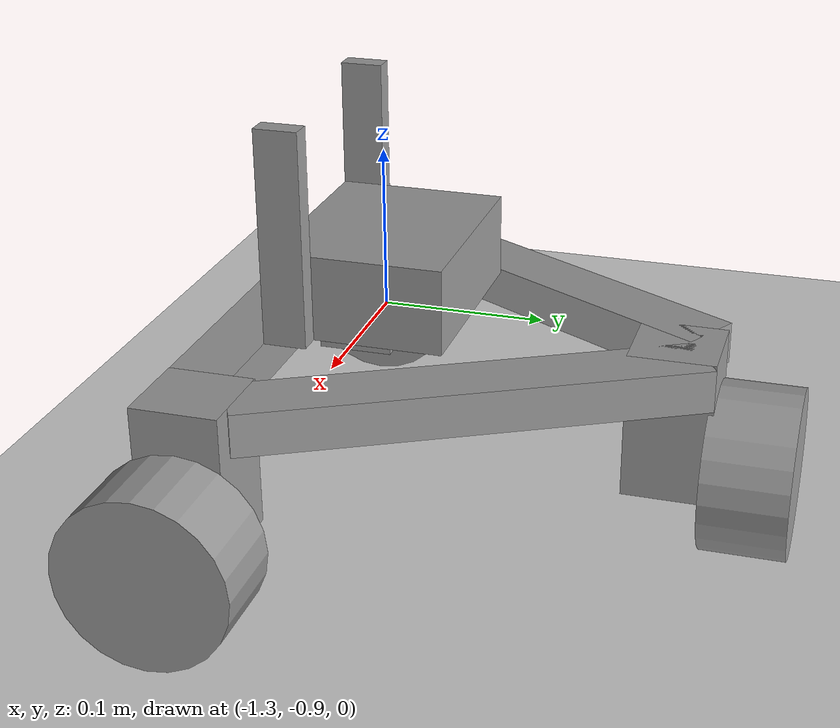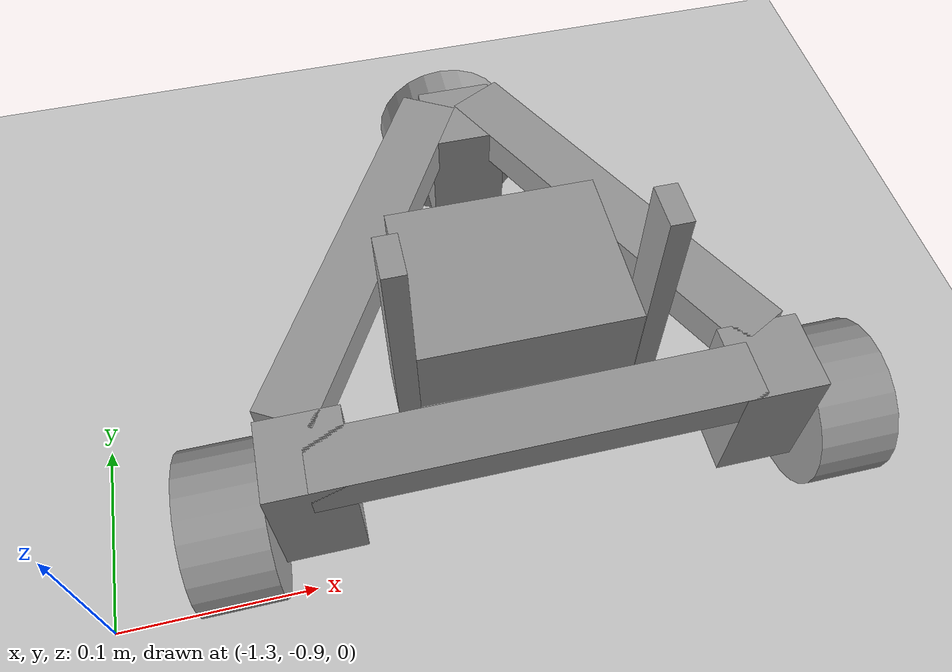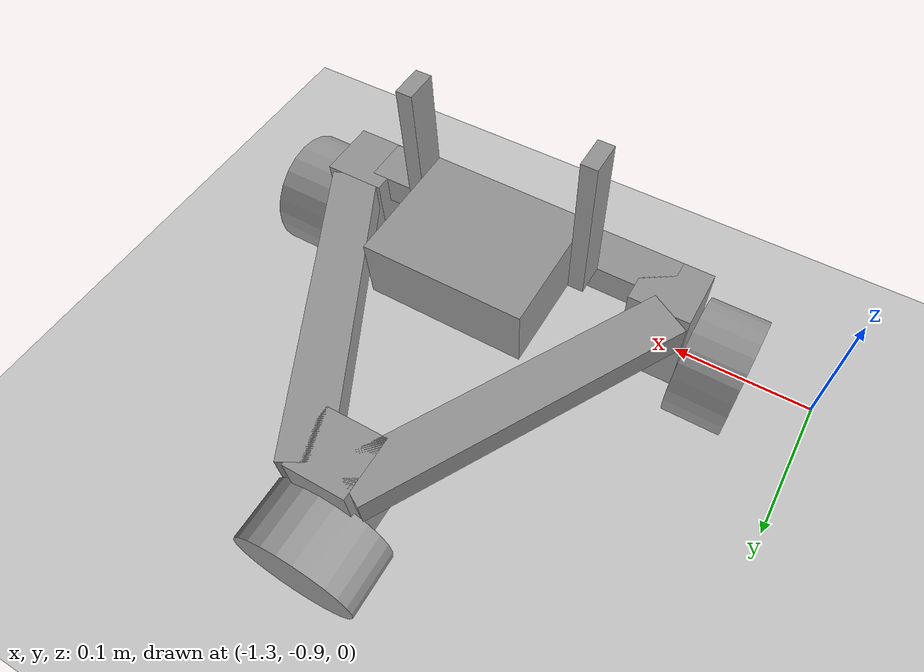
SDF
<sdf version="1.6">
 <world name="default">
  <model name="ground_plane">
   <static>1</static>
   <link name="link">
    <collision name="collision">
     <geometry><plane><normal>0 0 1</normal><size>100 100</size></plane></geometry>
     <surface><friction><ode><mu>100</mu><mu2>50</mu2></ode></friction></surface>
    </collision>
    <visual name="visual">
     <cast_shadows>0</cast_shadows>
     <geometry><plane><normal>0 0 1</normal><size>100 100</size></plane></geometry>
     <material>
      <script><uri>file://media/materials/scripts/gazebo.material</uri><name>Gazebo/Grey</name></script>
     </material>
    </visual>
   </link>
  </model>
  <model name="Kaya_0">
   <link name="link_0">
    <pose>-0.003284 -0.064713 0.005909 0 -0 0</pose>
    <inertial>
     <mass>1</mass>
     <inertia>
      <ixx>0.166667</ixx>
      <ixy>0</ixy>
      <ixz>0</ixz>
      <iyy>0.166667</iyy>
      <iyz>0</iyz>
      <izz>0.166667</izz>
     </inertia>
    </inertial>
    <visual name="visual">
     <geometry><box><size>0.21 0.03 0.02</size></box></geometry>
     <material>
      <lighting>1</lighting>
      <script><uri>file://media/materials/scripts/gazebo.material</uri><name>Gazebo/Grey</name></script>
      <ambient>0.3 0.3 0.3 1</ambient>
      <diffuse>0.7 0.7 0.7 1</diffuse>
      <specular>0.01 0.01 0.01 1</specular>
      <emissive>0 0 0 1</emissive>
      <shader type="vertex"><normal_map>__default__</normal_map></shader>
     </material>
    </visual>
    <collision name="collision">
     <geometry><box><size>0.21 0.03 0.02</size></box></geometry>
     <surface>
      <friction>
       <ode><mu>1</mu><mu2>1</mu2><fdir1>0 0 0</fdir1><slip1>0</slip1><slip2>0</slip2></ode>
       <torsional>
        <coefficient>1</coefficient>
        <patch_radius>0</patch_radius>
        <surface_radius>0</surface_radius>
        <use_patch_radius>1</use_patch_radius>
        <ode><slip>0</slip></ode>
       </torsional>
      </friction>
      <bounce><restitution_coefficient>0</restitution_coefficient><threshold>1e+06</threshold></bounce>
      <contact>
       <collide_without_contact>0</collide_without_contact>
       <collide_without_contact_bitmask>1</collide_without_contact_bitmask>
       <collide_bitmask>1</collide_bitmask>
       <ode>
        <soft_cfm>0</soft_cfm>
        <soft_erp>0.2</soft_erp>
        <kp>1e+13</kp>
        <kd>1</kd>
        <max_vel>0.01</max_vel>
        <min_depth>0</min_depth>
       </ode>
       <bullet>
        <split_impulse>1</split_impulse>
        <split_impulse_penetration_threshold>-0.01</split_impulse_penetration_threshold>
        <soft_cfm>0</soft_cfm>
        <soft_erp>0.2</soft_erp>
        <kp>1e+13</kp>
        <kd>1</kd>
       </bullet>
      </contact>
     </surface>
    </collision>
   </link>
   <link name="link_0_clone">
    <pose>0.063805 0.048952 0.005909 0 0 -1.08918</pose>
    <inertial>
     <mass>1</mass>
     <inertia>
      <ixx>0.166667</ixx>
      <ixy>0</ixy>
      <ixz>0</ixz>
      <iyy>0.166667</iyy>
      <iyz>0</iyz>
      <izz>0.166667</izz>
     </inertia>
    </inertial>
    <visual name="visual">
     <geometry><box><size>0.21 0.03 0.02</size></box></geometry>
     <material>
      <lighting>1</lighting>
      <script><uri>file://media/materials/scripts/gazebo.material</uri><name>Gazebo/Grey</name></script>
      <ambient>0.3 0.3 0.3 1</ambient>
      <diffuse>0.7 0.7 0.7 1</diffuse>
      <specular>0.01 0.01 0.01 1</specular>
      <emissive>0 0 0 1</emissive>
      <shader type="vertex"><normal_map>__default__</normal_map></shader>
     </material>
    </visual>
    <collision name="collision">
     <geometry><box><size>0.21 0.03 0.02</size></box></geometry>
     <surface>
      <friction>
       <ode><mu>1</mu><mu2>1</mu2><fdir1>0 0 0</fdir1><slip1>0</slip1><slip2>0</slip2></ode>
       <torsional>
        <coefficient>1</coefficient>
        <patch_radius>0</patch_radius>
        <surface_radius>0</surface_radius>
        <use_patch_radius>1</use_patch_radius>
        <ode><slip>0</slip></ode>
       </torsional>
      </friction>
      <bounce><restitution_coefficient>0</restitution_coefficient><threshold>1e+06</threshold></bounce>
      <contact>
       <collide_without_contact>0</collide_without_contact>
       <collide_without_contact_bitmask>1</collide_without_contact_bitmask>
       <collide_bitmask>1</collide_bitmask>
       <ode>
        <soft_cfm>0</soft_cfm>
        <soft_erp>0.2</soft_erp>
        <kp>1e+13</kp>
        <kd>1</kd>
        <max_vel>0.01</max_vel>
        <min_depth>0</min_depth>
       </ode>
       <bullet>
        <split_impulse>1</split_impulse>
        <split_impulse_penetration_threshold>-0.01</split_impulse_penetration_threshold>
        <soft_cfm>0</soft_cfm>
        <soft_erp>0.2</soft_erp>
        <kp>1e+13</kp>
        <kd>1</kd>
       </bullet>
      </contact>
     </surface>
    </collision>
   </link>
   <link name="link_0_clone_clone">
    <pose>-0.063575 0.049785 0.005909 0 0 -2.0892</pose>
    <inertial>
     <mass>1</mass>
     <inertia>
      <ixx>0.166667</ixx>
      <ixy>0</ixy>
      <ixz>0</ixz>
      <iyy>0.166667</iyy>
      <iyz>0</iyz>
      <izz>0.166667</izz>
     </inertia>
    </inertial>
    <visual name="visual">
     <geometry><box><size>0.21 0.03 0.02</size></box></geometry>
     <material>
      <lighting>1</lighting>
      <script><uri>file://media/materials/scripts/gazebo.material</uri><name>Gazebo/Grey</name></script>
      <ambient>0.3 0.3 0.3 1</ambient>
      <diffuse>0.7 0.7 0.7 1</diffuse>
      <specular>0.01 0.01 0.01 1</specular>
      <emissive>0 0 0 1</emissive>
      <shader type="vertex"><normal_map>__default__</normal_map></shader>
     </material>
    </visual>
    <collision name="collision">
     <geometry><box><size>0.21 0.03 0.02</size></box></geometry>
     <surface>
      <friction>
       <ode><mu>1</mu><mu2>1</mu2><fdir1>0 0 0</fdir1><slip1>0</slip1><slip2>0</slip2></ode>
       <torsional>
        <coefficient>1</coefficient>
        <patch_radius>0</patch_radius>
        <surface_radius>0</surface_radius>
        <use_patch_radius>1</use_patch_radius>
        <ode><slip>0</slip></ode>
       </torsional>
      </friction>
      <bounce><restitution_coefficient>0</restitution_coefficient><threshold>1e+06</threshold></bounce>
      <contact>
       <collide_without_contact>0</collide_without_contact>
       <collide_without_contact_bitmask>1</collide_without_contact_bitmask>
       <collide_bitmask>1</collide_bitmask>
       <ode>
        <soft_cfm>0</soft_cfm>
        <soft_erp>0.2</soft_erp>
        <kp>1e+13</kp>
        <kd>1</kd>
        <max_vel>0.01</max_vel>
        <min_depth>0</min_depth>
       </ode>
       <bullet>
        <split_impulse>1</split_impulse>
        <split_impulse_penetration_threshold>-0.01</split_impulse_penetration_threshold>
        <soft_cfm>0</soft_cfm>
        <soft_erp>0.2</soft_erp>
        <kp>1e+13</kp>
        <kd>1</kd>
       </bullet>
      </contact>
     </surface>
    </collision>
   </link>
   <link name="link_2">
    <pose>0.003786 0.128421 -0.019091 0 -0 0</pose>
    <inertial>
     <mass>1</mass>
     <inertia>
      <ixx>0.166667</ixx>
      <ixy>0</ixy>
      <ixz>0</ixz>
      <iyy>0.166667</iyy>
      <iyz>0</iyz>
      <izz>0.166667</izz>
     </inertia>
    </inertial>
    <visual name="visual">
     <geometry><box><size>0.04 0.04 0.07</size></box></geometry>
     <material>
      <lighting>1</lighting>
      <script><uri>file://media/materials/scripts/gazebo.material</uri><name>Gazebo/Grey</name></script>
      <ambient>0.3 0.3 0.3 1</ambient>
      <diffuse>0.7 0.7 0.7 1</diffuse>
      <specular>0.01 0.01 0.01 1</specular>
      <emissive>0 0 0 1</emissive>
      <shader type="vertex"><normal_map>__default__</normal_map></shader>
     </material>
    </visual>
    <collision name="collision">
     <geometry><box><size>0.04 0.04 0.07</size></box></geometry>
     <surface>
      <friction>
       <ode><mu>1</mu><mu2>1</mu2><fdir1>0 0 0</fdir1><slip1>0</slip1><slip2>0</slip2></ode>
       <torsional>
        <coefficient>1</coefficient>
        <patch_radius>0</patch_radius>
        <surface_radius>0</surface_radius>
        <use_patch_radius>1</use_patch_radius>
        <ode><slip>0</slip></ode>
       </torsional>
      </friction>
      <bounce><restitution_coefficient>0</restitution_coefficient><threshold>1e+06</threshold></bounce>
      <contact>
       <collide_without_contact>0</collide_without_contact>
       <collide_without_contact_bitmask>1</collide_without_contact_bitmask>
       <collide_bitmask>1</collide_bitmask>
       <ode>
        <soft_cfm>0</soft_cfm>
        <soft_erp>0.2</soft_erp>
        <kp>1e+13</kp>
        <kd>1</kd>
        <max_vel>0.01</max_vel>
        <min_depth>0</min_depth>
       </ode>
       <bullet>
        <split_impulse>1</split_impulse>
        <split_impulse_penetration_threshold>-0.01</split_impulse_penetration_threshold>
        <soft_cfm>0</soft_cfm>
        <soft_erp>0.2</soft_erp>
        <kp>1e+13</kp>
        <kd>1</kd>
       </bullet>
      </contact>
     </surface>
    </collision>
   </link>
   <link name="link_2_clone">
    <pose>0.110929 -0.059858 -0.019091 0 -0 0</pose>
    <inertial>
     <mass>1</mass>
     <inertia>
      <ixx>0.166667</ixx>
      <ixy>0</ixy>
      <ixz>0</ixz>
      <iyy>0.166667</iyy>
      <iyz>0</iyz>
      <izz>0.166667</izz>
     </inertia>
    </inertial>
    <visual name="visual">
     <geometry><box><size>0.04 0.04 0.07</size></box></geometry>
     <material>
      <lighting>1</lighting>
      <script><uri>file://media/materials/scripts/gazebo.material</uri><name>Gazebo/Grey</name></script>
      <ambient>0.3 0.3 0.3 1</ambient>
      <diffuse>0.7 0.7 0.7 1</diffuse>
      <specular>0.01 0.01 0.01 1</specular>
      <emissive>0 0 0 1</emissive>
      <shader type="vertex"><normal_map>__default__</normal_map></shader>
     </material>
    </visual>
    <collision name="collision">
     <geometry><box><size>0.04 0.04 0.07</size></box></geometry>
     <surface>
      <friction>
       <ode><mu>1</mu><mu2>1</mu2><fdir1>0 0 0</fdir1><slip1>0</slip1><slip2>0</slip2></ode>
       <torsional>
        <coefficient>1</coefficient>
        <patch_radius>0</patch_radius>
        <surface_radius>0</surface_radius>
        <use_patch_radius>1</use_patch_radius>
        <ode><slip>0</slip></ode>
       </torsional>
      </friction>
      <bounce><restitution_coefficient>0</restitution_coefficient><threshold>1e+06</threshold></bounce>
      <contact>
       <collide_without_contact>0</collide_without_contact>
       <collide_without_contact_bitmask>1</collide_without_contact_bitmask>
       <collide_bitmask>1</collide_bitmask>
       <ode>
        <soft_cfm>0</soft_cfm>
        <soft_erp>0.2</soft_erp>
        <kp>1e+13</kp>
        <kd>1</kd>
        <max_vel>0.01</max_vel>
        <min_depth>0</min_depth>
       </ode>
       <bullet>
        <split_impulse>1</split_impulse>
        <split_impulse_penetration_threshold>-0.01</split_impulse_penetration_threshold>
        <soft_cfm>0</soft_cfm>
        <soft_erp>0.2</soft_erp>
        <kp>1e+13</kp>
        <kd>1</kd>
       </bullet>
      </contact>
     </surface>
    </collision>
   </link>
   <link name="link_2_clone_clone">
    <pose>-0.108631 -0.059713 -0.019091 0 -0 0</pose>
    <inertial>
     <mass>1</mass>
     <inertia>
      <ixx>0.166667</ixx>
      <ixy>0</ixy>
      <ixz>0</ixz>
      <iyy>0.166667</iyy>
      <iyz>0</iyz>
      <izz>0.166667</izz>
     </inertia>
    </inertial>
    <visual name="visual">
     <geometry><box><size>0.04 0.04 0.07</size></box></geometry>
     <material>
      <lighting>1</lighting>
      <script><uri>file://media/materials/scripts/gazebo.material</uri><name>Gazebo/Grey</name></script>
      <ambient>0.3 0.3 0.3 1</ambient>
      <diffuse>0.7 0.7 0.7 1</diffuse>
      <specular>0.01 0.01 0.01 1</specular>
      <emissive>0 0 0 1</emissive>
      <shader type="vertex"><normal_map>__default__</normal_map></shader>
     </material>
    </visual>
    <collision name="collision">
     <geometry><box><size>0.04 0.04 0.07</size></box></geometry>
     <surface>
      <friction>
       <ode><mu>1</mu><mu2>1</mu2><fdir1>0 0 0</fdir1><slip1>0</slip1><slip2>0</slip2></ode>
       <torsional>
        <coefficient>1</coefficient>
        <patch_radius>0</patch_radius>
        <surface_radius>0</surface_radius>
        <use_patch_radius>1</use_patch_radius>
        <ode><slip>0</slip></ode>
       </torsional>
      </friction>
      <bounce><restitution_coefficient>0</restitution_coefficient><threshold>1e+06</threshold></bounce>
      <contact>
       <collide_without_contact>0</collide_without_contact>
       <collide_without_contact_bitmask>1</collide_without_contact_bitmask>
       <collide_bitmask>1</collide_bitmask>
       <ode>
        <soft_cfm>0</soft_cfm>
        <soft_erp>0.2</soft_erp>
        <kp>1e+13</kp>
        <kd>1</kd>
        <max_vel>0.01</max_vel>
        <min_depth>0</min_depth>
       </ode>
       <bullet>
        <split_impulse>1</split_impulse>
        <split_impulse_penetration_threshold>-0.01</split_impulse_penetration_threshold>
        <soft_cfm>0</soft_cfm>
        <soft_erp>0.2</soft_erp>
        <kp>1e+13</kp>
        <kd>1</kd>
       </bullet>
      </contact>
     </surface>
    </collision>
   </link>
   <link name="link_3">
    <pose>0.003786 0.165885 -0.042727 -1.5708 0 0</pose>
    <inertial>
     <mass>1</mass>
     <inertia><ixx>0.145833</ixx><ixy>0</ixy><ixz>0</ixz><iyy>0.145833</iyy><iyz>0</iyz><izz>0.125</izz></inertia>
    </inertial>
    <visual name="visual">
     <geometry><cylinder><radius>0.04</radius><length>0.04</length></cylinder></geometry>
     <material>
      <lighting>1</lighting>
      <script><uri>file://media/materials/scripts/gazebo.material</uri><name>Gazebo/Grey</name></script>
      <ambient>0.3 0.3 0.3 1</ambient>
      <diffuse>0.7 0.7 0.7 1</diffuse>
      <specular>0.01 0.01 0.01 1</specular>
      <emissive>0 0 0 1</emissive>
      <shader type="vertex"><normal_map>__default__</normal_map></shader>
     </material>
    </visual>
    <collision name="collision">
     <geometry><cylinder><radius>0.04</radius><length>0.04</length></cylinder></geometry>
     <surface>
      <friction>
       <ode><mu>1</mu><mu2>1</mu2><fdir1>0 0 0</fdir1><slip1>0</slip1><slip2>0</slip2></ode>
       <torsional>
        <coefficient>1</coefficient>
        <patch_radius>0</patch_radius>
        <surface_radius>0</surface_radius>
        <use_patch_radius>1</use_patch_radius>
        <ode><slip>0</slip></ode>
       </torsional>
      </friction>
      <bounce><restitution_coefficient>0</restitution_coefficient><threshold>1e+06</threshold></bounce>
      <contact>
       <collide_without_contact>0</collide_without_contact>
       <collide_without_contact_bitmask>1</collide_without_contact_bitmask>
       <collide_bitmask>1</collide_bitmask>
       <ode>
        <soft_cfm>0</soft_cfm>
        <soft_erp>0.2</soft_erp>
        <kp>1e+13</kp>
        <kd>1</kd>
        <max_vel>0.01</max_vel>
        <min_depth>0</min_depth>
       </ode>
       <bullet>
        <split_impulse>1</split_impulse>
        <split_impulse_penetration_threshold>-0.01</split_impulse_penetration_threshold>
        <soft_cfm>0</soft_cfm>
        <soft_erp>0.2</soft_erp>
        <kp>1e+13</kp>
        <kd>1</kd>
       </bullet>
      </contact>
     </surface>
    </collision>
   </link>
   <link name="link_3_clone">
    <pose>0.152356 -0.059858 -0.042727 -1.5708 -0 -1.5708</pose>
    <inertial>
     <mass>1</mass>
     <inertia><ixx>0.145833</ixx><ixy>0</ixy><ixz>0</ixz><iyy>0.145833</iyy><iyz>0</iyz><izz>0.125</izz></inertia>
    </inertial>
    <visual name="visual">
     <geometry><cylinder><radius>0.04</radius><length>0.04</length></cylinder></geometry>
     <material>
      <lighting>1</lighting>
      <script><uri>file://media/materials/scripts/gazebo.material</uri><name>Gazebo/Grey</name></script>
      <ambient>0.3 0.3 0.3 1</ambient>
      <diffuse>0.7 0.7 0.7 1</diffuse>
      <specular>0.01 0.01 0.01 1</specular>
      <emissive>0 0 0 1</emissive>
      <shader type="vertex"><normal_map>__default__</normal_map></shader>
     </material>
    </visual>
    <collision name="collision">
     <geometry><cylinder><radius>0.04</radius><length>0.04</length></cylinder></geometry>
     <surface>
      <friction>
       <ode><mu>1</mu><mu2>1</mu2><fdir1>0 0 0</fdir1><slip1>0</slip1><slip2>0</slip2></ode>
       <torsional>
        <coefficient>1</coefficient>
        <patch_radius>0</patch_radius>
        <surface_radius>0</surface_radius>
        <use_patch_radius>1</use_patch_radius>
        <ode><slip>0</slip></ode>
       </torsional>
      </friction>
      <bounce><restitution_coefficient>0</restitution_coefficient><threshold>1e+06</threshold></bounce>
      <contact>
       <collide_without_contact>0</collide_without_contact>
       <collide_without_contact_bitmask>1</collide_without_contact_bitmask>
       <collide_bitmask>1</collide_bitmask>
       <ode>
        <soft_cfm>0</soft_cfm>
        <soft_erp>0.2</soft_erp>
        <kp>1e+13</kp>
        <kd>1</kd>
        <max_vel>0.01</max_vel>
        <min_depth>0</min_depth>
       </ode>
       <bullet>
        <split_impulse>1</split_impulse>
        <split_impulse_penetration_threshold>-0.01</split_impulse_penetration_threshold>
        <soft_cfm>0</soft_cfm>
        <soft_erp>0.2</soft_erp>
        <kp>1e+13</kp>
        <kd>1</kd>
       </bullet>
      </contact>
     </surface>
    </collision>
   </link>
   <link name="link_3_clone_clone">
    <pose>-0.150254 -0.059713 -0.042727 -1.5708 0 1.5708</pose>
    <inertial>
     <mass>1</mass>
     <inertia><ixx>0.145833</ixx><ixy>0</ixy><ixz>0</ixz><iyy>0.145833</iyy><iyz>0</iyz><izz>0.125</izz></inertia>
    </inertial>
    <visual name="visual">
     <geometry><cylinder><radius>0.04</radius><length>0.04</length></cylinder></geometry>
     <material>
      <lighting>1</lighting>
      <script><uri>file://media/materials/scripts/gazebo.material</uri><name>Gazebo/Grey</name></script>
      <ambient>0.3 0.3 0.3 1</ambient>
      <diffuse>0.7 0.7 0.7 1</diffuse>
      <specular>0.01 0.01 0.01 1</specular>
      <emissive>0 0 0 1</emissive>
      <shader type="vertex"><normal_map>__default__</normal_map></shader>
     </material>
    </visual>
    <collision name="collision">
     <geometry><cylinder><radius>0.04</radius><length>0.04</length></cylinder></geometry>
     <surface>
      <friction>
       <ode><mu>1</mu><mu2>1</mu2><fdir1>0 0 0</fdir1><slip1>0</slip1><slip2>0</slip2></ode>
       <torsional>
        <coefficient>1</coefficient>
        <patch_radius>0</patch_radius>
        <surface_radius>0</surface_radius>
        <use_patch_radius>1</use_patch_radius>
        <ode><slip>0</slip></ode>
       </torsional>
      </friction>
      <bounce><restitution_coefficient>0</restitution_coefficient><threshold>1e+06</threshold></bounce>
      <contact>
       <collide_without_contact>0</collide_without_contact>
       <collide_without_contact_bitmask>1</collide_without_contact_bitmask>
       <collide_bitmask>1</collide_bitmask>
       <ode>
        <soft_cfm>0</soft_cfm>
        <soft_erp>0.2</soft_erp>
        <kp>1e+13</kp>
        <kd>1</kd>
        <max_vel>0.01</max_vel>
        <min_depth>0</min_depth>
       </ode>
       <bullet>
        <split_impulse>1</split_impulse>
        <split_impulse_penetration_threshold>-0.01</split_impulse_penetration_threshold>
        <soft_cfm>0</soft_cfm>
        <soft_erp>0.2</soft_erp>
        <kp>1e+13</kp>
        <kd>1</kd>
       </bullet>
      </contact>
     </surface>
    </collision>
   </link>
   <link name="link_4">
    <pose>-0.003284 -0.0095 0.035909 0 0 -1.57506</pose>
    <inertial>
     <mass>1</mass>
     <inertia>
      <ixx>0.166667</ixx>
      <ixy>0</ixy>
      <ixz>0</ixz>
      <iyy>0.166667</iyy>
      <iyz>0</iyz>
      <izz>0.166667</izz>
     </inertia>
    </inertial>
    <visual name="visual">
     <geometry><box><size>0.08 0.1 0.04</size></box></geometry>
     <material>
      <lighting>1</lighting>
      <script><uri>file://media/materials/scripts/gazebo.material</uri><name>Gazebo/Grey</name></script>
      <ambient>0.3 0.3 0.3 1</ambient>
      <diffuse>0.7 0.7 0.7 1</diffuse>
      <specular>0.01 0.01 0.01 1</specular>
      <emissive>0 0 0 1</emissive>
      <shader type="vertex"><normal_map>__default__</normal_map></shader>
     </material>
    </visual>
    <collision name="collision">
     <geometry><box><size>0.08 0.1 0.04</size></box></geometry>
     <surface>
      <friction>
       <ode><mu>1</mu><mu2>1</mu2><fdir1>0 0 0</fdir1><slip1>0</slip1><slip2>0</slip2></ode>
       <torsional>
        <coefficient>1</coefficient>
        <patch_radius>0</patch_radius>
        <surface_radius>0</surface_radius>
        <use_patch_radius>1</use_patch_radius>
        <ode><slip>0</slip></ode>
       </torsional>
      </friction>
      <bounce><restitution_coefficient>0</restitution_coefficient><threshold>1e+06</threshold></bounce>
      <contact>
       <collide_without_contact>0</collide_without_contact>
       <collide_without_contact_bitmask>1</collide_without_contact_bitmask>
       <collide_bitmask>1</collide_bitmask>
       <ode>
        <soft_cfm>0</soft_cfm>
        <soft_erp>0.2</soft_erp>
        <kp>1e+13</kp>
        <kd>1</kd>
        <max_vel>0.01</max_vel>
        <min_depth>0</min_depth>
       </ode>
       <bullet>
        <split_impulse>1</split_impulse>
        <split_impulse_penetration_threshold>-0.01</split_impulse_penetration_threshold>
        <soft_cfm>0</soft_cfm>
        <soft_erp>0.2</soft_erp>
        <kp>1e+13</kp>
        <kd>1</kd>
       </bullet>
      </contact>
     </surface>
    </collision>
   </link>
   <link name="link_5">
    <pose>-0.058454 -0.039713 0.065909 0 -0 0</pose>
    <inertial>
     <mass>1</mass>
     <inertia>
      <ixx>0.166667</ixx>
      <ixy>0</ixy>
      <ixz>0</ixz>
      <iyy>0.166667</iyy>
      <iyz>0</iyz>
      <izz>0.166667</izz>
     </inertia>
    </inertial>
    <visual name="visual">
     <geometry><box><size>0.01 0.02 0.1</size></box></geometry>
     <material>
      <lighting>1</lighting>
      <script><uri>file://media/materials/scripts/gazebo.material</uri><name>Gazebo/Grey</name></script>
      <ambient>0.3 0.3 0.3 1</ambient>
      <diffuse>0.7 0.7 0.7 1</diffuse>
      <specular>0.01 0.01 0.01 1</specular>
      <emissive>0 0 0 1</emissive>
      <shader type="vertex"><normal_map>__default__</normal_map></shader>
     </material>
    </visual>
    <collision name="collision">
     <geometry><box><size>0.01 0.02 0.1</size></box></geometry>
     <surface>
      <friction>
       <ode><mu>1</mu><mu2>1</mu2><fdir1>0 0 0</fdir1><slip1>0</slip1><slip2>0</slip2></ode>
       <torsional>
        <coefficient>1</coefficient>
        <patch_radius>0</patch_radius>
        <surface_radius>0</surface_radius>
        <use_patch_radius>1</use_patch_radius>
        <ode><slip>0</slip></ode>
       </torsional>
      </friction>
      <bounce><restitution_coefficient>0</restitution_coefficient><threshold>1e+06</threshold></bounce>
      <contact>
       <collide_without_contact>0</collide_without_contact>
       <collide_without_contact_bitmask>1</collide_without_contact_bitmask>
       <collide_bitmask>1</collide_bitmask>
       <ode>
        <soft_cfm>0</soft_cfm>
        <soft_erp>0.2</soft_erp>
        <kp>1e+13</kp>
        <kd>1</kd>
        <max_vel>0.01</max_vel>
        <min_depth>0</min_depth>
       </ode>
       <bullet>
        <split_impulse>1</split_impulse>
        <split_impulse_penetration_threshold>-0.01</split_impulse_penetration_threshold>
        <soft_cfm>0</soft_cfm>
        <soft_erp>0.2</soft_erp>
        <kp>1e+13</kp>
        <kd>1</kd>
       </bullet>
      </contact>
     </surface>
    </collision>
   </link>
   <link name="link_5_clone">
    <pose>0.051886 -0.039713 0.065909 0 -0 0</pose>
    <inertial>
     <mass>1</mass>
     <inertia>
      <ixx>0.166667</ixx>
      <ixy>0</ixy>
      <ixz>0</ixz>
      <iyy>0.166667</iyy>
      <iyz>0</iyz>
      <izz>0.166667</izz>
     </inertia>
    </inertial>
    <visual name="visual">
     <geometry><box><size>0.01 0.02 0.1</size></box></geometry>
     <material>
      <lighting>1</lighting>
      <script><uri>file://media/materials/scripts/gazebo.material</uri><name>Gazebo/Grey</name></script>
      <ambient>0.3 0.3 0.3 1</ambient>
      <diffuse>0.7 0.7 0.7 1</diffuse>
      <specular>0.01 0.01 0.01 1</specular>
      <emissive>0 0 0 1</emissive>
      <shader type="vertex"><normal_map>__default__</normal_map></shader>
     </material>
    </visual>
    <collision name="collision">
     <geometry><box><size>0.01 0.02 0.1</size></box></geometry>
     <surface>
      <friction>
       <ode><mu>1</mu><mu2>1</mu2><fdir1>0 0 0</fdir1><slip1>0</slip1><slip2>0</slip2></ode>
       <torsional>
        <coefficient>1</coefficient>
        <patch_radius>0</patch_radius>
        <surface_radius>0</surface_radius>
        <use_patch_radius>1</use_patch_radius>
        <ode><slip>0</slip></ode>
       </torsional>
      </friction>
      <bounce><restitution_coefficient>0</restitution_coefficient><threshold>1e+06</threshold></bounce>
      <contact>
       <collide_without_contact>0</collide_without_contact>
       <collide_without_contact_bitmask>1</collide_without_contact_bitmask>
       <collide_bitmask>1</collide_bitmask>
       <ode>
        <soft_cfm>0</soft_cfm>
        <soft_erp>0.2</soft_erp>
        <kp>1e+13</kp>
        <kd>1</kd>
        <max_vel>0.01</max_vel>
        <min_depth>0</min_depth>
       </ode>
       <bullet>
        <split_impulse>1</split_impulse>
        <split_impulse_penetration_threshold>-0.01</split_impulse_penetration_threshold>
        <soft_cfm>0</soft_cfm>
        <soft_erp>0.2</soft_erp>
        <kp>1e+13</kp>
        <kd>1</kd>
       </bullet>
      </contact>
     </surface>
    </collision>
   </link>
   <joint name="link_0_JOINT_10" type="fixed">
    <parent>link_0</parent>
    <child>link_2_clone_clone</child>
    <physics>
     <ode><limit><cfm>0</cfm><erp>0.2</erp></limit><suspension><cfm>0</cfm><erp>0.2</erp></suspension></ode>
    </physics>
   </joint>
   <joint name="link_0_JOINT_12" type="fixed">
    <parent>link_0</parent>
    <child>link_2_clone</child>
    <physics>
     <ode><limit><cfm>0</cfm><erp>0.2</erp></limit><suspension><cfm>0</cfm><erp>0.2</erp></suspension></ode>
    </physics>
   </joint>
   <joint name="link_0_JOINT_16" type="fixed">
    <parent>link_0</parent>
    <child>link_4</child>
    <physics>
     <ode><limit><cfm>0</cfm><erp>0.2</erp></limit><suspension><cfm>0</cfm><erp>0.2</erp></suspension></ode>
    </physics>
   </joint>
   <joint name="link_0_JOINT_2" type="fixed">
    <parent>link_0</parent>
    <child>link_0_clone</child>
    <physics>
     <ode><limit><cfm>0</cfm><erp>0.2</erp></limit><suspension><cfm>0</cfm><erp>0.2</erp></suspension></ode>
    </physics>
   </joint>
   <joint name="link_0_JOINT_3" type="fixed">
    <parent>link_0</parent>
    <child>link_0_clone_clone</child>
    <physics>
     <ode><limit><cfm>0</cfm><erp>0.2</erp></limit><suspension><cfm>0</cfm><erp>0.2</erp></suspension></ode>
    </physics>
   </joint>
   <joint name="link_0_clone_JOINT_13" type="fixed">
    <parent>link_0_clone</parent>
    <child>link_2_clone</child>
    <physics>
     <ode><limit><cfm>0</cfm><erp>0.2</erp></limit><suspension><cfm>0</cfm><erp>0.2</erp></suspension></ode>
    </physics>
   </joint>
   <joint name="link_0_clone_JOINT_5" type="fixed">
    <parent>link_0_clone</parent>
    <child>link_2</child>
    <physics>
     <ode><limit><cfm>0</cfm><erp>0.2</erp></limit><suspension><cfm>0</cfm><erp>0.2</erp></suspension></ode>
    </physics>
   </joint>
   <joint name="link_0_clone_clone_JOINT_4" type="fixed">
    <parent>link_0_clone_clone</parent>
    <child>link_0_clone</child>
    <physics>
     <ode><limit><cfm>0</cfm><erp>0.2</erp></limit><suspension><cfm>0</cfm><erp>0.2</erp></suspension></ode>
    </physics>
   </joint>
   <joint name="link_0_clone_clone_JOINT_6" type="fixed">
    <parent>link_0_clone_clone</parent>
    <child>link_2</child>
    <physics>
     <ode><limit><cfm>0</cfm><erp>0.2</erp></limit><suspension><cfm>0</cfm><erp>0.2</erp></suspension></ode>
    </physics>
   </joint>
   <joint name="link_0_clone_clone_JOINT_9" type="fixed">
    <parent>link_0_clone_clone</parent>
    <child>link_2_clone_clone</child>
    <physics>
     <ode><limit><cfm>0</cfm><erp>0.2</erp></limit><suspension><cfm>0</cfm><erp>0.2</erp></suspension></ode>
    </physics>
   </joint>
   <joint name="wheel1_joint" type="revolute">
    <parent>link_2</parent>
    <child>link_3</child>
    <axis>
     <xyz>0 0 1</xyz>
     <use_parent_model_frame>0</use_parent_model_frame>
     <limit><lower>-1e+16</lower><upper>1e+16</upper><effort>-1</effort><velocity>-1</velocity></limit>
     <dynamics>
      <spring_reference>0</spring_reference>
      <spring_stiffness>0</spring_stiffness>
      <damping>0</damping>
      <friction>0</friction>
     </dynamics>
    </axis>
    <physics>
     <ode><limit><cfm>0</cfm><erp>0.2</erp></limit><suspension><cfm>0</cfm><erp>0.2</erp></suspension></ode>
    </physics>
   </joint>
   <joint name="link_2_clone_JOINT_14" type="revolute">
    <parent>link_2_clone</parent>
    <child>link_3_clone</child>
    <axis>
     <xyz>1 0 0</xyz>
     <use_parent_model_frame>0</use_parent_model_frame>
     <limit>
      <lower>-1.79769e+308</lower>
      <upper>1.79769e+308</upper>
      <effort>-1</effort>
      <velocity>-1</velocity>
     </limit>
     <dynamics>
      <spring_reference>0</spring_reference>
      <spring_stiffness>0</spring_stiffness>
      <damping>0</damping>
     </dynamics>
    </axis>
    <physics>
     <ode><limit><cfm>0</cfm><erp>0.2</erp></limit><suspension><cfm>0</cfm><erp>0.2</erp></suspension></ode>
    </physics>
   </joint>
   <joint name="link_2_clone_clone_JOINT_15" type="revolute">
    <parent>link_2_clone_clone</parent>
    <child>link_3_clone_clone</child>
    <axis>
     <xyz>1 0 0</xyz>
     <use_parent_model_frame>0</use_parent_model_frame>
     <limit>
      <lower>-1.79769e+308</lower>
      <upper>1.79769e+308</upper>
      <effort>-1</effort>
      <velocity>-1</velocity>
     </limit>
     <dynamics>
      <spring_reference>0</spring_reference>
      <spring_stiffness>0</spring_stiffness>
      <damping>0</damping>
     </dynamics>
    </axis>
    <physics>
     <ode><limit><cfm>0</cfm><erp>0.2</erp></limit><suspension><cfm>0</cfm><erp>0.2</erp></suspension></ode>
    </physics>
   </joint>
   <joint name="link_4_JOINT_17" type="fixed">
    <parent>link_4</parent>
    <child>link_5</child>
    <physics>
     <ode><limit><cfm>0</cfm><erp>0.2</erp></limit><suspension><cfm>0</cfm><erp>0.2</erp></suspension></ode>
    </physics>
   </joint>
   <joint name="link_4_JOINT_18" type="fixed">
    <parent>link_4</parent>
    <child>link_5_clone</child>
    <physics>
     <ode><limit><cfm>0</cfm><erp>0.2</erp></limit><suspension><cfm>0</cfm><erp>0.2</erp></suspension></ode>
    </physics>
   </joint>
   <static>0</static>
   <pose>-1.08128 -0.814681 0.082726 2e-05 4e-06 -0.001309</pose>
  </model>
 </world>
</sdf>
